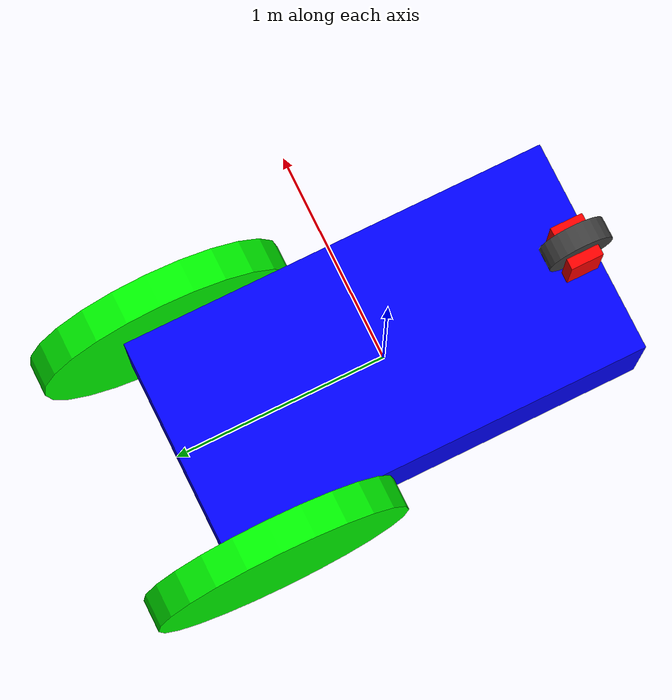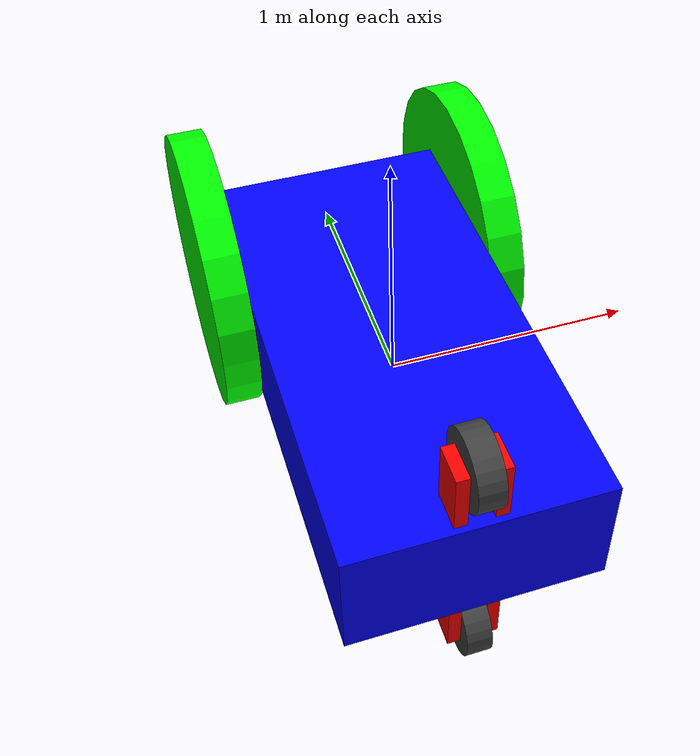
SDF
<sdf version='1.9'>
  <model name='robot'>
    <link name='base_link'>
      <inertial>
        <pose>0 -0.2571428571428571 0 0 0 0</pose>
        <mass>14</mass>
        <inertia>
          <ixx>3.940119047619048</ixx>
          <ixy>0</ixy>
          <ixz>0</ixz>
          <iyy>4.7599999999999998</iyy>
          <iyz>0</iyz>
          <izz>5.9067857142857143</izz>
        </inertia>
      </inertial>
      <collision name='base_link_collision'>
        <pose>0 0 0 0 0 0</pose>
        <geometry>
          <box>
            <size>1 2 0.5</size>
          </box>
        </geometry>
      </collision>
      <collision name='base_link_fixed_joint_lump__casterattach_bottom_L_collision_1'>
        <pose>-0.07500000000000001 -0.9 -0.375 0 0 0</pose>
        <geometry>
          <box>
            <size>0.05 0.15 0.25</size>
          </box>
        </geometry>
      </collision>
      <collision name='base_link_fixed_joint_lump__casterattach_bottom_R_collision_2'>
        <pose>0.07500000000000001 -0.9 -0.375 0 0 0</pose>
        <geometry>
          <box>
            <size>0.05 0.15 0.25</size>
          </box>
        </geometry>
      </collision>
      <collision name='base_link_fixed_joint_lump__casterattach_top_L_collision_3'>
        <pose>-0.07500000000000001 -0.9 0.375 0 0 0</pose>
        <geometry>
          <box>
            <size>0.05 0.15 0.25</size>
          </box>
        </geometry>
      </collision>
      <collision name='base_link_fixed_joint_lump__casterattach_top_R_collision_4'>
        <pose>0.07500000000000001 -0.9 0.375 0 0 0</pose>
        <geometry>
          <box>
            <size>0.05 0.15 0.25</size>
          </box>
        </geometry>
      </collision>
      <visual name='base_link_visual'>
        <pose>0 0 0 0 0 0</pose>
        <geometry>
          <box>
            <size>1 2 0.5</size>
          </box>
        </geometry>
        <material>
          <diffuse>0 0 1 1</diffuse>
          <ambient>0 0 1 1</ambient>
        </material>
      </visual>
      <visual name='base_link_fixed_joint_lump__casterattach_bottom_L_visual_1'>
        <pose>-0.07500000000000001 -0.9 -0.375 0 0 0</pose>
        <geometry>
          <box>
            <size>0.05 0.15 0.25</size>
          </box>
        </geometry>
        <material>
          <diffuse>1 0 0 1</diffuse>
          <ambient>1 0 0 1</ambient>
        </material>
      </visual>
      <visual name='base_link_fixed_joint_lump__casterattach_bottom_R_visual_2'>
        <pose>0.07500000000000001 -0.9 -0.375 0 0 0</pose>
        <geometry>
          <box>
            <size>0.05 0.15 0.25</size>
          </box>
        </geometry>
        <material>
          <diffuse>1 0 0 1</diffuse>
          <ambient>1 0 0 1</ambient>
        </material>
      </visual>
      <visual name='base_link_fixed_joint_lump__casterattach_top_L_visual_3'>
        <pose>-0.07500000000000001 -0.9 0.375 0 0 0</pose>
        <geometry>
          <box>
            <size>0.05 0.15 0.25</size>
          </box>
        </geometry>
        <material>
          <diffuse>1 0 0 1</diffuse>
          <ambient>1 0 0 1</ambient>
        </material>
      </visual>
      <visual name='base_link_fixed_joint_lump__casterattach_top_R_visual_4'>
        <pose>0.07500000000000001 -0.9 0.375 0 0 0</pose>
        <geometry>
          <box>
            <size>0.05 0.15 0.25</size>
          </box>
        </geometry>
        <material>
          <diffuse>1 0 0 1</diffuse>
          <ambient>1 0 0 1</ambient>
        </material>
      </visual>
    </link>
    <joint name='base_to_L_front_wheel' type='revolute'>
      <pose relative_to='base_link'>-0.575 0.8 0 0 0 0</pose>
      <parent>base_link</parent>
      <child>L_front_wheel</child>
      <axis>
        <xyz>1 0 0</xyz>
        <limit>
          <lower>-10000000000000000</lower>
          <upper>10000000000000000</upper>
        </limit>
        <dynamics>
          <spring_reference>0</spring_reference>
          <spring_stiffness>0</spring_stiffness>
        </dynamics>
      </axis>
    </joint>
    <link name='L_front_wheel'>
      <pose relative_to='base_to_L_front_wheel'>0 0 0 0 0 0</pose>
      <inertial>
        <pose>0 0 0 0 0 0</pose>
        <mass>5</mass>
        <inertia>
          <ixx>0.45937499999999998</ixx>
          <ixy>0</ixy>
          <ixz>0</ixz>
          <iyy>0.89999999999999991</iyy>
          <iyz>0</iyz>
          <izz>0.45937499999999998</izz>
        </inertia>
      </inertial>
      <collision name='L_front_wheel_collision'>
        <pose>0 0 0 0 1.570796326794897 0</pose>
        <geometry>
          <cylinder>
            <length>0.14999999999999999</length>
            <radius>0.59999999999999998</radius>
          </cylinder>
        </geometry>
      </collision>
      <visual name='L_front_wheel_visual'>
        <pose>0 0 0 0 1.570796326794897 0</pose>
        <geometry>
          <cylinder>
            <length>0.14999999999999999</length>
            <radius>0.59999999999999998</radius>
          </cylinder>
        </geometry>
        <material>
          <diffuse>0 1 0 1</diffuse>
          <ambient>0 1 0 1</ambient>
        </material>
      </visual>
    </link>
    <joint name='base_to_R_front_wheel' type='revolute'>
      <pose relative_to='base_link'>0.575 0.8 0 0 0 0</pose>
      <parent>base_link</parent>
      <child>R_front_wheel</child>
      <axis>
        <xyz>1 0 0</xyz>
        <limit>
          <lower>-10000000000000000</lower>
          <upper>10000000000000000</upper>
        </limit>
        <dynamics>
          <spring_reference>0</spring_reference>
          <spring_stiffness>0</spring_stiffness>
        </dynamics>
      </axis>
    </joint>
    <link name='R_front_wheel'>
      <pose relative_to='base_to_R_front_wheel'>0 0 0 0 0 0</pose>
      <inertial>
        <pose>0 0 0 0 0 0</pose>
        <mass>5</mass>
        <inertia>
          <ixx>0.45937499999999998</ixx>
          <ixy>0</ixy>
          <ixz>0</ixz>
          <iyy>0.89999999999999991</iyy>
          <iyz>0</iyz>
          <izz>0.45937499999999998</izz>
        </inertia>
      </inertial>
      <collision name='R_front_wheel_collision'>
        <pose>0 0 0 0 1.570796326794897 0</pose>
        <geometry>
          <cylinder>
            <length>0.14999999999999999</length>
            <radius>0.59999999999999998</radius>
          </cylinder>
        </geometry>
      </collision>
      <visual name='R_front_wheel_visual'>
        <pose>0 0 0 0 1.570796326794897 0</pose>
        <geometry>
          <cylinder>
            <length>0.14999999999999999</length>
            <radius>0.59999999999999998</radius>
          </cylinder>
        </geometry>
        <material>
          <diffuse>0 1 0 1</diffuse>
          <ambient>0 1 0 1</ambient>
        </material>
      </visual>
    </link>
    <joint name='base_to_bottom_caster_wheel' type='revolute'>
      <pose relative_to='base_link'>0 -0.9 -0.45 0 0 0</pose>
      <parent>base_link</parent>
      <child>bottom_caster_wheel</child>
      <axis>
        <xyz>1 0 0</xyz>
        <limit>
          <lower>-10000000000000000</lower>
          <upper>10000000000000000</upper>
        </limit>
        <dynamics>
          <spring_reference>0</spring_reference>
          <spring_stiffness>0</spring_stiffness>
        </dynamics>
      </axis>
    </joint>
    <link name='bottom_caster_wheel'>
      <pose relative_to='base_to_bottom_caster_wheel'>0 0 0 0 0 0</pose>
      <inertial>
        <pose>0 0 0 0 0 0</pose>
        <mass>1</mass>
        <inertia>
          <ixx>0.0043750000000000004</ixx>
          <ixy>0</ixy>
          <ixz>0</ixz>
          <iyy>0.005000000000000001</iyy>
          <iyz>0</iyz>
          <izz>0.0043750000000000004</izz>
        </inertia>
      </inertial>
      <collision name='bottom_caster_wheel_collision'>
        <pose>0 0 0 0 1.570796326794897 0</pose>
        <geometry>
          <cylinder>
            <length>0.10000000000000001</length>
            <radius>0.14999999999999999</radius>
          </cylinder>
        </geometry>
      </collision>
      <visual name='bottom_caster_wheel_visual'>
        <pose>0 0 0 0 1.570796326794897 0</pose>
        <geometry>
          <cylinder>
            <length>0.10000000000000001</length>
            <radius>0.14999999999999999</radius>
          </cylinder>
        </geometry>
        <material>
          <diffuse>0.25 0.25 0.25 1</diffuse>
          <ambient>0.25 0.25 0.25 1</ambient>
        </material>
      </visual>
    </link>
    <joint name='base_to_top_caster_wheel' type='revolute'>
      <pose relative_to='base_link'>0 -0.9 0.45 0 0 0</pose>
      <parent>base_link</parent>
      <child>top_caster_wheel</child>
      <axis>
        <xyz>1 0 0</xyz>
        <limit>
          <lower>-10000000000000000</lower>
          <upper>10000000000000000</upper>
        </limit>
        <dynamics>
          <spring_reference>0</spring_reference>
          <spring_stiffness>0</spring_stiffness>
        </dynamics>
      </axis>
    </joint>
    <link name='top_caster_wheel'>
      <pose relative_to='base_to_top_caster_wheel'>0 0 0 0 0 0</pose>
      <inertial>
        <pose>0 0 0 0 0 0</pose>
        <mass>1</mass>
        <inertia>
          <ixx>0.0043750000000000004</ixx>
          <ixy>0</ixy>
          <ixz>0</ixz>
          <iyy>0.005000000000000001</iyy>
          <iyz>0</iyz>
          <izz>0.0043750000000000004</izz>
        </inertia>
      </inertial>
      <collision name='top_caster_wheel_collision'>
        <pose>0 0 0 0 1.570796326794897 0</pose>
        <geometry>
          <cylinder>
            <length>0.10000000000000001</length>
            <radius>0.14999999999999999</radius>
          </cylinder>
        </geometry>
      </collision>
      <visual name='top_caster_wheel_visual'>
        <pose>0 0 0 0 1.570796326794897 0</pose>
        <geometry>
          <cylinder>
            <length>0.10000000000000001</length>
            <radius>0.14999999999999999</radius>
          </cylinder>
        </geometry>
        <material>
          <diffuse>0.25 0.25 0.25 1</diffuse>
          <ambient>0.25 0.25 0.25 1</ambient>
        </material>
      </visual>
    </link>
    <static>false</static>
    <plugin name='ignition::gazebo::systems::DiffDrive' filename='libignition-gazebo-diff-drive-system.so'>
      <odom_publish_frequency>100</odom_publish_frequency>
      <left_joint>L_front_wheel</left_joint>
      <right_joint>R_front_wheel</right_joint>
      <wheel_radius>0.6</wheel_radius>
      <topic>/cmd_vel</topic>
      <odom_topic>/odom</odom_topic>
      <gazebo link='L_front_wheel'>
        <mu1>0.2</mu1>
        <mu2>0.2</mu2>
      </gazebo>
      <gazebo link='R_front_wheel'>
        <mu1>0.2</mu1>
        <mu2>0.2</mu2>
      </gazebo>
    </plugin>
  </model>
</sdf>
